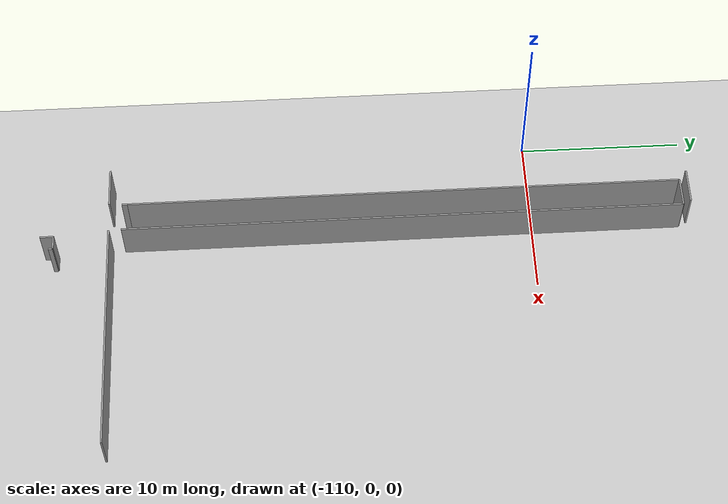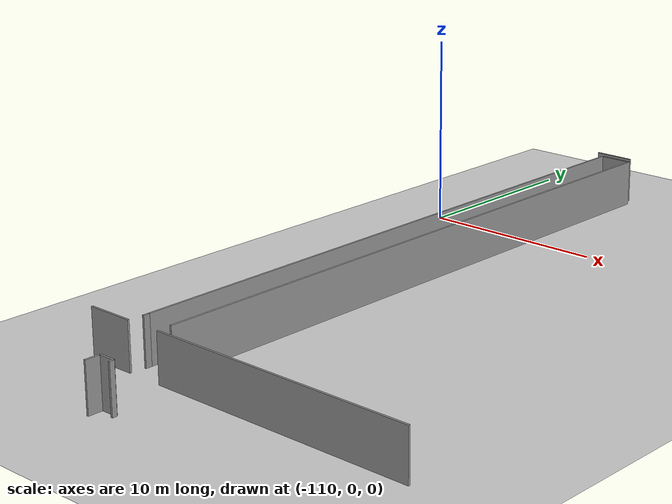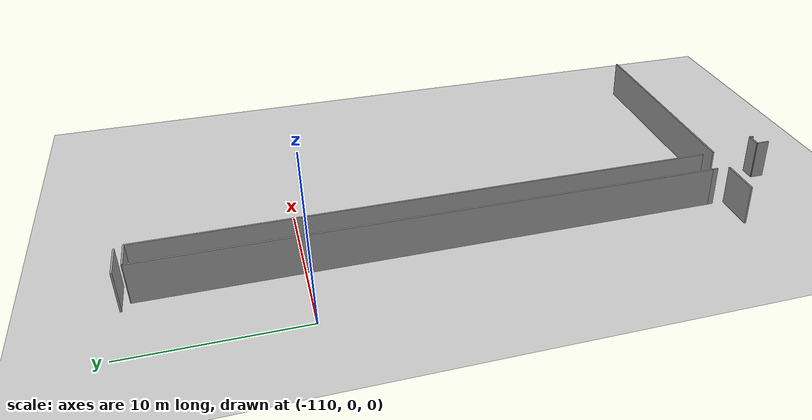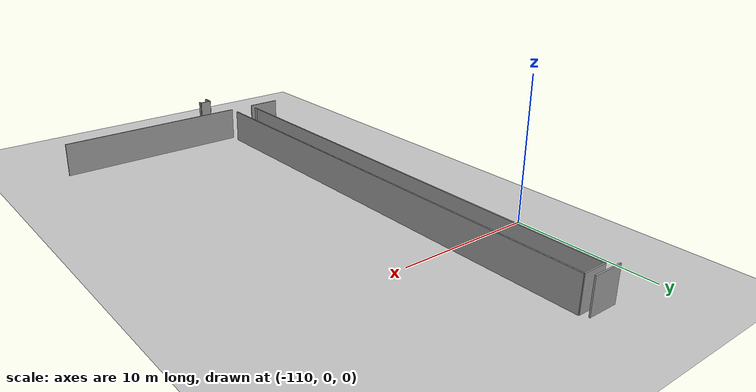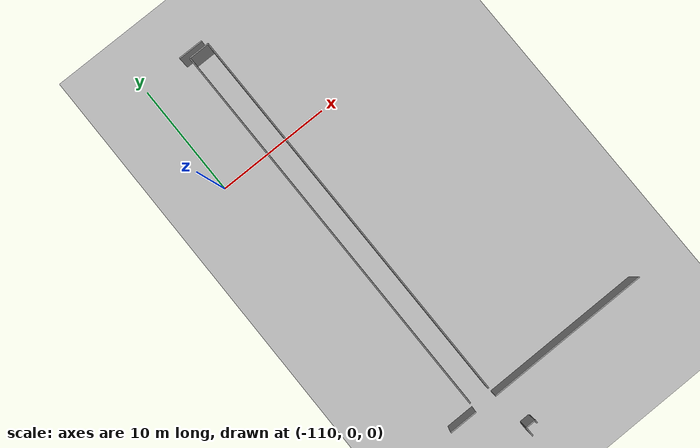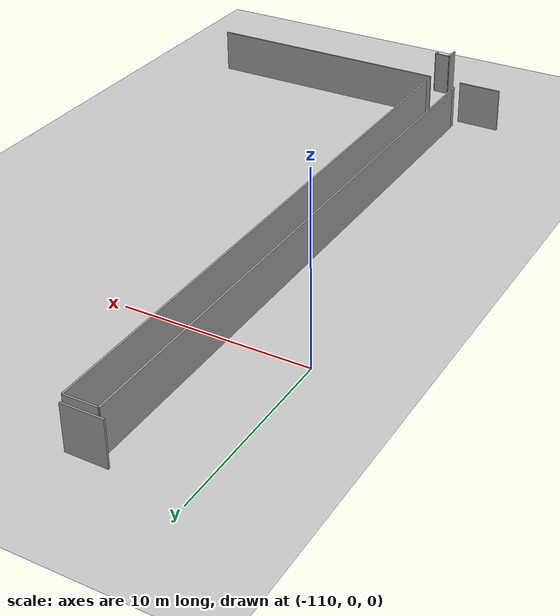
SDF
<sdf version="1.6">
 <world name="default">
  <model name="ground_plane">
   <static>1</static>
   <link name="link">
    <collision name="collision">
     <geometry><plane><normal>0 0 1</normal><size>100 100</size></plane></geometry>
     <surface><friction><ode><mu>100</mu><mu2>50</mu2></ode></friction></surface>
    </collision>
    <visual name="visual">
     <cast_shadows>0</cast_shadows>
     <geometry><plane><normal>0 0 1</normal><size>100 100</size></plane></geometry>
     <material>
      <script><uri>file://media/materials/scripts/gazebo.material</uri><name>Gazebo/Grey</name></script>
     </material>
    </visual>
   </link>
  </model>
  <model name="0510035518_A_40_1_101">
   <static>1</static>
   <link name="Wall_93">
    <collision name="Wall_93_Collision">
     <geometry><box><size>2.19856389258 0.1 2.5</size></box></geometry>
     <pose>1.09928194629 0 1.25 0 0 0</pose>
    </collision>
    <visual name="Wall_93_Visual">
     <pose>1.09928194629 0 1.25 0 0 0</pose>
     <geometry><box><size>2.19856389258 0.1 2.5</size></box></geometry>
     <material>
      <script><uri>file://media/materials/scripts/gazebo.material</uri><name>Gazebo/Grey</name></script>
      <ambient>1 1 1 1</ambient>
     </material>
    </visual>
    <pose>12.7969514131 -58.990155605 0 0 0 3.13685499548</pose>
   </link>
   <link name="Wall_94">
    <collision name="Wall_94_Collision">
     <geometry><box><size>33.9015560495 0.1 2.5</size></box></geometry>
     <pose>16.9507780248 0 1.25 0 0 0</pose>
    </collision>
    <visual name="Wall_94_Visual">
     <pose>16.9507780248 0 1.25 0 0 0</pose>
     <geometry><box><size>33.9015560495 0.1 2.5</size></box></geometry>
     <material>
      <script><uri>file://media/materials/scripts/gazebo.material</uri><name>Gazebo/Grey</name></script>
      <ambient>1 1 1 1</ambient>
     </material>
    </visual>
    <pose>11.2332804065 -93.3723721816 0 0 0 1.57079632679</pose>
   </link>
   <link name="Wall_95">
    <collision name="Wall_95_Collision">
     <geometry><box><size>1.80577961258 0.1 2.5</size></box></geometry>
     <pose>0.902889806288 0 1.25 0 0 0</pose>
    </collision>
    <visual name="Wall_95_Visual">
     <pose>0.902889806288 0 1.25 0 0 0</pose>
     <geometry><box><size>1.80577961258 0.1 2.5</size></box></geometry>
     <material>
      <script><uri>file://media/materials/scripts/gazebo.material</uri><name>Gazebo/Grey</name></script>
      <ambient>1 1 1 1</ambient>
     </material>
    </visual>
    <pose>11.2332804065 -59.4708161321 0 0 0 0.0</pose>
   </link>
   <link name="Wall_96">
    <collision name="Wall_96_Collision">
     <geometry><box><size>34.2422356304 0.1 2.5</size></box></geometry>
     <pose>17.1211178152 0 1.25 0 0 0</pose>
    </collision>
    <visual name="Wall_96_Visual">
     <pose>17.1211178152 0 1.25 0 0 0</pose>
     <geometry><box><size>34.2422356304 0.1 2.5</size></box></geometry>
     <material>
      <script><uri>file://media/materials/scripts/gazebo.material</uri><name>Gazebo/Grey</name></script>
      <ambient>1 1 1 1</ambient>
     </material>
    </visual>
    <pose>13.0390600191 -59.4708161321 0 0 0 -1.57079632679</pose>
   </link>
   <link name="Wall_97">
    <collision name="Wall_97_Collision">
     <geometry><box><size>0.340717468184 0.1 2.5</size></box></geometry>
     <pose>0.170358734092 0 1.25 0 0 0</pose>
    </collision>
    <visual name="Wall_97_Visual">
     <pose>0.170358734092 0 1.25 0 0 0</pose>
     <geometry><box><size>0.340717468184 0.1 2.5</size></box></geometry>
     <material>
      <script><uri>file://media/materials/scripts/gazebo.material</uri><name>Gazebo/Grey</name></script>
      <ambient>1 1 1 1</ambient>
     </material>
    </visual>
    <pose>11.2383613846 -93.7130517625 0 0 0 1.58570946423</pose>
   </link>
   <link name="Wall_99">
    <collision name="Wall_99_Collision">
     <geometry><box><size>2.46986344871 0.1 2.5</size></box></geometry>
     <pose>1.23493172436 0 1.25 0 0 0</pose>
    </collision>
    <visual name="Wall_99_Visual">
     <pose>1.23493172436 0 1.25 0 0 0</pose>
     <geometry><box><size>2.46986344871 0.1 2.5</size></box></geometry>
     <material>
      <script><uri>file://media/materials/scripts/gazebo.material</uri><name>Gazebo/Grey</name></script>
      <ambient>1 1 1 1</ambient>
     </material>
    </visual>
    <pose>8.69177516672 -94.4741822801 0 0 0 0.0</pose>
   </link>
   <link name="Wall_100">
    <collision name="Wall_100_Collision">
     <geometry><box><size>14.2922832645 0.1 2.5</size></box></geometry>
     <pose>7.14614163226 0 1.25 0 0 0</pose>
    </collision>
    <visual name="Wall_100_Visual">
     <pose>7.14614163226 0 1.25 0 0 0</pose>
     <geometry><box><size>14.2922832645 0.1 2.5</size></box></geometry>
     <material>
      <script><uri>file://media/materials/scripts/gazebo.material</uri><name>Gazebo/Grey</name></script>
      <ambient>1 1 1 1</ambient>
     </material>
    </visual>
    <pose>13.0728485233 -94.4741822801 0 0 0 0.0</pose>
   </link>
   <link name="Wall_103">
    <collision name="Wall_103_Collision">
     <geometry><box><size>0.254557002223 0.1 2.5</size></box></geometry>
     <pose>0.127278501111 0 1.25 0 0 0</pose>
    </collision>
    <visual name="Wall_103_Visual">
     <pose>0.127278501111 0 1.25 0 0 0</pose>
     <geometry><box><size>0.254557002223 0.1 2.5</size></box></geometry>
     <material>
      <script><uri>file://media/materials/scripts/gazebo.material</uri><name>Gazebo/Grey</name></script>
      <ambient>1 1 1 1</ambient>
     </material>
    </visual>
    <pose>14.2313115275 -98.0369641156 0 0 0 1.57079632679</pose>
   </link>
   <link name="Wall_104">
    <collision name="Wall_104_Collision">
     <geometry><box><size>0.872149888854 0.1 2.5</size></box></geometry>
     <pose>0.436074944427 0 1.25 0 0 0</pose>
    </collision>
    <visual name="Wall_104_Visual">
     <pose>0.436074944427 0 1.25 0 0 0</pose>
     <geometry><box><size>0.872149888854 0.1 2.5</size></box></geometry>
     <material>
      <script><uri>file://media/materials/scripts/gazebo.material</uri><name>Gazebo/Grey</name></script>
      <ambient>1 1 1 1</ambient>
     </material>
    </visual>
    <pose>14.2313115275 -97.7824071134 0 0 0 3.14159265359</pose>
   </link>
   <link name="Wall_105">
    <collision name="Wall_105_Collision">
     <geometry><box><size>0.805589075897 0.1 2.5</size></box></geometry>
     <pose>0.402794537949 0 1.25 0 0 0</pose>
    </collision>
    <visual name="Wall_105_Visual">
     <pose>0.402794537949 0 1.25 0 0 0</pose>
     <geometry><box><size>0.805589075897 0.1 2.5</size></box></geometry>
     <material>
      <script><uri>file://media/materials/scripts/gazebo.material</uri><name>Gazebo/Grey</name></script>
      <ambient>1 1 1 1</ambient>
     </material>
    </visual>
    <pose>13.3591616386 -97.7824071134 0 0 0 -1.57079632679</pose>
   </link>
   <pose>-116.8 68.630612893 0 0 0 0</pose>
  </model>
 </world>
</sdf>
